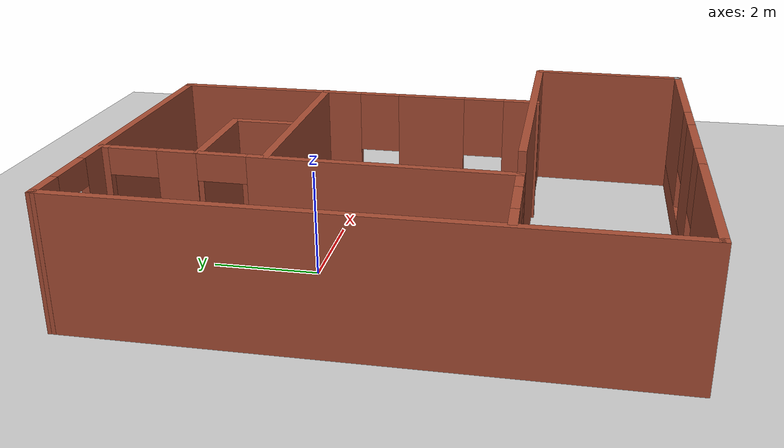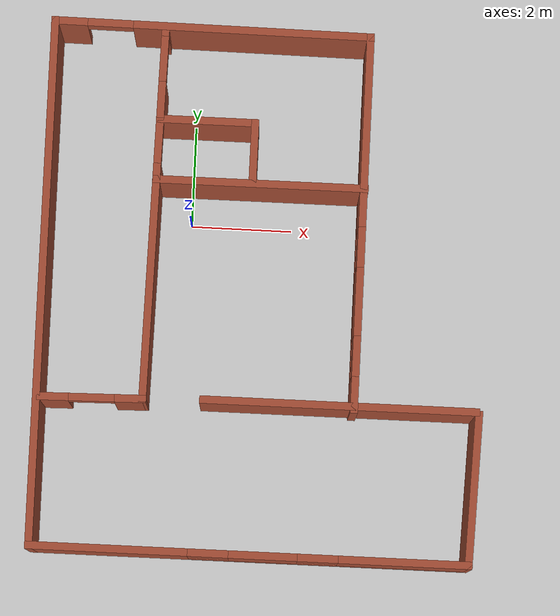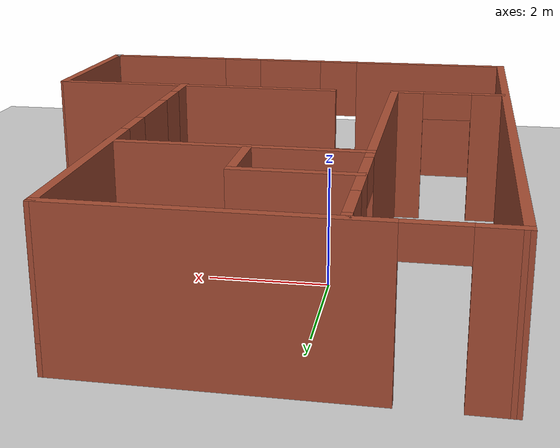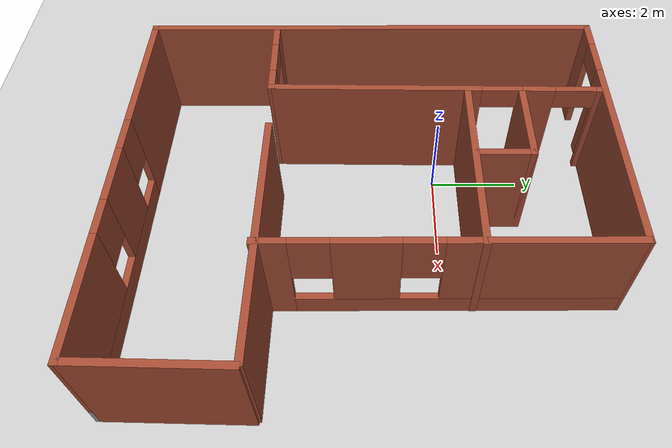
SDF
<sdf version="1.6">
 <world name="default">
  <model name="ground_plane">
   <static>1</static>
   <link name="link">
    <collision name="collision">
     <geometry><plane><normal>0 0 1</normal><size>100 100</size></plane></geometry>
     <surface>
      <contact><collide_bitmask>65535</collide_bitmask></contact>
      <friction><ode><mu>100</mu><mu2>50</mu2></ode></friction>
     </surface>
    </collision>
    <visual name="visual">
     <cast_shadows>0</cast_shadows>
     <geometry><plane><normal>0 0 1</normal><size>100 100</size></plane></geometry>
     <material>
      <script><uri>file://media/materials/scripts/gazebo.material</uri><name>Gazebo/Grey</name></script>
     </material>
    </visual>
   </link>
  </model>
  <model name="home">
   <link name="Wall_0">
    <pose>-4.35728 0.000688 0 0 0 -1.5708</pose>
    <visual name="Wall_0_Visual">
     <pose>0 0 1.25 0 -0 0</pose>
     <geometry><box><size>10.5 0.15 2.5</size></box></geometry>
     <material>
      <script><uri>file://media/materials/scripts/gazebo.material</uri><name>Gazebo/Bricks</name></script>
      <ambient>1 1 1 1</ambient>
      <shader type="pixel"/>
      <diffuse>1 1 1 1</diffuse>
      <specular>0.2 0.2 0.2 1</specular>
      <emissive>0 0 0 1</emissive>
     </material>
     <meta><layer>0</layer></meta>
    </visual>
    <collision name="Wall_0_Collision">
     <pose>0 0 1.25 0 -0 0</pose>
     <geometry><box><size>10.5 0.15 2.5</size></box></geometry>
     <surface>
      <friction>
       <ode><mu>1</mu><mu2>1</mu2><fdir1>0 0 0</fdir1><slip1>0</slip1><slip2>0</slip2></ode>
       <torsional>
        <coefficient>1</coefficient>
        <patch_radius>0</patch_radius>
        <surface_radius>0</surface_radius>
        <use_patch_radius>1</use_patch_radius>
        <ode><slip>0</slip></ode>
       </torsional>
      </friction>
      <bounce><restitution_coefficient>0</restitution_coefficient><threshold>1e+06</threshold></bounce>
      <contact>
       <collide_without_contact>0</collide_without_contact>
       <collide_without_contact_bitmask>1</collide_without_contact_bitmask>
       <collide_bitmask>1</collide_bitmask>
       <ode>
        <soft_cfm>0</soft_cfm>
        <soft_erp>0.2</soft_erp>
        <kp>1e+13</kp>
        <kd>1</kd>
        <max_vel>0.01</max_vel>
        <min_depth>0</min_depth>
       </ode>
       <bullet>
        <split_impulse>1</split_impulse>
        <split_impulse_penetration_threshold>-0.01</split_impulse_penetration_threshold>
        <soft_cfm>0</soft_cfm>
        <soft_erp>0.2</soft_erp>
        <kp>1e+13</kp>
        <kd>1</kd>
       </bullet>
      </contact>
     </surface>
    </collision>
   </link>
   <link name="Wall_10">
    <pose>-0.057284 -5.17431 0 0 -0 0</pose>
    <visual name="Wall_10_Visual_0">
     <pose>-2.78631 0 1.25 0 -0 0</pose>
     <geometry><box><size>3.17739 0.15 2.5</size></box></geometry>
     <material>
      <script><uri>file://media/materials/scripts/gazebo.material</uri><name>Gazebo/Bricks</name></script>
      <ambient>1 1 1 1</ambient>
      <shader type="pixel"/>
      <diffuse>1 1 1 1</diffuse>
      <specular>0.2 0.2 0.2 1</specular>
      <emissive>0 0 0 1</emissive>
     </material>
     <meta><layer>0</layer></meta>
    </visual>
    <visual name="Wall_10_Visual_1">
     <pose>1.58869 0 0.25 0 -0 0</pose>
     <geometry><box><size>5.57261 0.15 0.5</size></box></geometry>
     <material>
      <script><uri>file://media/materials/scripts/gazebo.material</uri><name>Gazebo/Bricks</name></script>
      <ambient>1 1 1 1</ambient>
      <shader type="pixel"/>
      <diffuse>1 1 1 1</diffuse>
      <specular>0.2 0.2 0.2 1</specular>
      <emissive>0 0 0 1</emissive>
     </material>
     <meta><layer>0</layer></meta>
    </visual>
    <visual name="Wall_10_Visual_2">
     <pose>0.277961 0 1.5 0 -0 0</pose>
     <geometry><box><size>1.35115 0.15 2</size></box></geometry>
     <material>
      <script><uri>file://media/materials/scripts/gazebo.material</uri><name>Gazebo/Bricks</name></script>
      <ambient>1 1 1 1</ambient>
      <shader type="pixel"/>
      <diffuse>1 1 1 1</diffuse>
      <specular>0.2 0.2 0.2 1</specular>
      <emissive>0 0 0 1</emissive>
     </material>
     <meta><layer>0</layer></meta>
    </visual>
    <visual name="Wall_10_Visual_3">
     <pose>3.06427 0 1.5 0 -0 0</pose>
     <geometry><box><size>2.62147 0.15 2</size></box></geometry>
     <material>
      <script><uri>file://media/materials/scripts/gazebo.material</uri><name>Gazebo/Bricks</name></script>
      <ambient>1 1 1 1</ambient>
      <shader type="pixel"/>
      <diffuse>1 1 1 1</diffuse>
      <specular>0.2 0.2 0.2 1</specular>
      <emissive>0 0 0 1</emissive>
     </material>
     <meta><layer>0</layer></meta>
    </visual>
    <visual name="Wall_10_Visual_4">
     <pose>-0.797613 0 1.9 0 -0 0</pose>
     <geometry><box><size>0.8 0.15 1.2</size></box></geometry>
     <material>
      <script><uri>file://media/materials/scripts/gazebo.material</uri><name>Gazebo/Bricks</name></script>
      <ambient>1 1 1 1</ambient>
      <shader type="pixel"/>
      <diffuse>1 1 1 1</diffuse>
      <specular>0.2 0.2 0.2 1</specular>
      <emissive>0 0 0 1</emissive>
     </material>
     <meta><layer>0</layer></meta>
    </visual>
    <visual name="Wall_10_Visual_5">
     <pose>1.35353 0 1.9 0 -0 0</pose>
     <geometry><box><size>0.8 0.15 1.2</size></box></geometry>
     <material>
      <script><uri>file://media/materials/scripts/gazebo.material</uri><name>Gazebo/Bricks</name></script>
      <ambient>1 1 1 1</ambient>
      <shader type="pixel"/>
      <diffuse>1 1 1 1</diffuse>
      <specular>0.2 0.2 0.2 1</specular>
      <emissive>0 0 0 1</emissive>
     </material>
     <meta><layer>0</layer></meta>
    </visual>
    <collision name="Wall_10_Collision_0">
     <pose>-2.78631 0 1.25 0 -0 0</pose>
     <geometry><box><size>3.17739 0.15 2.5</size></box></geometry>
     <surface>
      <friction>
       <ode><mu>1</mu><mu2>1</mu2><fdir1>0 0 0</fdir1><slip1>0</slip1><slip2>0</slip2></ode>
       <torsional>
        <coefficient>1</coefficient>
        <patch_radius>0</patch_radius>
        <surface_radius>0</surface_radius>
        <use_patch_radius>1</use_patch_radius>
        <ode><slip>0</slip></ode>
       </torsional>
      </friction>
      <bounce><restitution_coefficient>0</restitution_coefficient><threshold>1e+06</threshold></bounce>
      <contact>
       <collide_without_contact>0</collide_without_contact>
       <collide_without_contact_bitmask>1</collide_without_contact_bitmask>
       <collide_bitmask>1</collide_bitmask>
       <ode>
        <soft_cfm>0</soft_cfm>
        <soft_erp>0.2</soft_erp>
        <kp>1e+13</kp>
        <kd>1</kd>
        <max_vel>0.01</max_vel>
        <min_depth>0</min_depth>
       </ode>
       <bullet>
        <split_impulse>1</split_impulse>
        <split_impulse_penetration_threshold>-0.01</split_impulse_penetration_threshold>
        <soft_cfm>0</soft_cfm>
        <soft_erp>0.2</soft_erp>
        <kp>1e+13</kp>
        <kd>1</kd>
       </bullet>
      </contact>
     </surface>
    </collision>
    <collision name="Wall_10_Collision_1">
     <pose>1.58869 0 0.25 0 -0 0</pose>
     <geometry><box><size>5.57261 0.15 0.5</size></box></geometry>
     <surface>
      <friction>
       <ode><mu>1</mu><mu2>1</mu2><fdir1>0 0 0</fdir1><slip1>0</slip1><slip2>0</slip2></ode>
       <torsional>
        <coefficient>1</coefficient>
        <patch_radius>0</patch_radius>
        <surface_radius>0</surface_radius>
        <use_patch_radius>1</use_patch_radius>
        <ode><slip>0</slip></ode>
       </torsional>
      </friction>
      <bounce><restitution_coefficient>0</restitution_coefficient><threshold>1e+06</threshold></bounce>
      <contact>
       <collide_without_contact>0</collide_without_contact>
       <collide_without_contact_bitmask>1</collide_without_contact_bitmask>
       <collide_bitmask>1</collide_bitmask>
       <ode>
        <soft_cfm>0</soft_cfm>
        <soft_erp>0.2</soft_erp>
        <kp>1e+13</kp>
        <kd>1</kd>
        <max_vel>0.01</max_vel>
        <min_depth>0</min_depth>
       </ode>
       <bullet>
        <split_impulse>1</split_impulse>
        <split_impulse_penetration_threshold>-0.01</split_impulse_penetration_threshold>
        <soft_cfm>0</soft_cfm>
        <soft_erp>0.2</soft_erp>
        <kp>1e+13</kp>
        <kd>1</kd>
       </bullet>
      </contact>
     </surface>
    </collision>
    <collision name="Wall_10_Collision_2">
     <pose>0.277961 0 1.5 0 -0 0</pose>
     <geometry><box><size>1.35115 0.15 2</size></box></geometry>
     <surface>
      <friction>
       <ode><mu>1</mu><mu2>1</mu2><fdir1>0 0 0</fdir1><slip1>0</slip1><slip2>0</slip2></ode>
       <torsional>
        <coefficient>1</coefficient>
        <patch_radius>0</patch_radius>
        <surface_radius>0</surface_radius>
        <use_patch_radius>1</use_patch_radius>
        <ode><slip>0</slip></ode>
       </torsional>
      </friction>
      <bounce><restitution_coefficient>0</restitution_coefficient><threshold>1e+06</threshold></bounce>
      <contact>
       <collide_without_contact>0</collide_without_contact>
       <collide_without_contact_bitmask>1</collide_without_contact_bitmask>
       <collide_bitmask>1</collide_bitmask>
       <ode>
        <soft_cfm>0</soft_cfm>
        <soft_erp>0.2</soft_erp>
        <kp>1e+13</kp>
        <kd>1</kd>
        <max_vel>0.01</max_vel>
        <min_depth>0</min_depth>
       </ode>
       <bullet>
        <split_impulse>1</split_impulse>
        <split_impulse_penetration_threshold>-0.01</split_impulse_penetration_threshold>
        <soft_cfm>0</soft_cfm>
        <soft_erp>0.2</soft_erp>
        <kp>1e+13</kp>
        <kd>1</kd>
       </bullet>
      </contact>
     </surface>
    </collision>
    <collision name="Wall_10_Collision_3">
     <pose>3.06427 0 1.5 0 -0 0</pose>
     <geometry><box><size>2.62147 0.15 2</size></box></geometry>
     <surface>
      <friction>
       <ode><mu>1</mu><mu2>1</mu2><fdir1>0 0 0</fdir1><slip1>0</slip1><slip2>0</slip2></ode>
       <torsional>
        <coefficient>1</coefficient>
        <patch_radius>0</patch_radius>
        <surface_radius>0</surface_radius>
        <use_patch_radius>1</use_patch_radius>
        <ode><slip>0</slip></ode>
       </torsional>
      </friction>
      <bounce><restitution_coefficient>0</restitution_coefficient><threshold>1e+06</threshold></bounce>
      <contact>
       <collide_without_contact>0</collide_without_contact>
       <collide_without_contact_bitmask>1</collide_without_contact_bitmask>
       <collide_bitmask>1</collide_bitmask>
       <ode>
        <soft_cfm>0</soft_cfm>
        <soft_erp>0.2</soft_erp>
        <kp>1e+13</kp>
        <kd>1</kd>
        <max_vel>0.01</max_vel>
        <min_depth>0</min_depth>
       </ode>
       <bullet>
        <split_impulse>1</split_impulse>
        <split_impulse_penetration_threshold>-0.01</split_impulse_penetration_threshold>
        <soft_cfm>0</soft_cfm>
        <soft_erp>0.2</soft_erp>
        <kp>1e+13</kp>
        <kd>1</kd>
       </bullet>
      </contact>
     </surface>
    </collision>
    <collision name="Wall_10_Collision_4">
     <pose>-0.797613 0 1.9 0 -0 0</pose>
     <geometry><box><size>0.8 0.15 1.2</size></box></geometry>
     <surface>
      <friction>
       <ode><mu>1</mu><mu2>1</mu2><fdir1>0 0 0</fdir1><slip1>0</slip1><slip2>0</slip2></ode>
       <torsional>
        <coefficient>1</coefficient>
        <patch_radius>0</patch_radius>
        <surface_radius>0</surface_radius>
        <use_patch_radius>1</use_patch_radius>
        <ode><slip>0</slip></ode>
       </torsional>
      </friction>
      <bounce><restitution_coefficient>0</restitution_coefficient><threshold>1e+06</threshold></bounce>
      <contact>
       <collide_without_contact>0</collide_without_contact>
       <collide_without_contact_bitmask>1</collide_without_contact_bitmask>
       <collide_bitmask>1</collide_bitmask>
       <ode>
        <soft_cfm>0</soft_cfm>
        <soft_erp>0.2</soft_erp>
        <kp>1e+13</kp>
        <kd>1</kd>
        <max_vel>0.01</max_vel>
        <min_depth>0</min_depth>
       </ode>
       <bullet>
        <split_impulse>1</split_impulse>
        <split_impulse_penetration_threshold>-0.01</split_impulse_penetration_threshold>
        <soft_cfm>0</soft_cfm>
        <soft_erp>0.2</soft_erp>
        <kp>1e+13</kp>
        <kd>1</kd>
       </bullet>
      </contact>
     </surface>
    </collision>
    <collision name="Wall_10_Collision_5">
     <pose>1.35353 0 1.9 0 -0 0</pose>
     <geometry><box><size>0.8 0.15 1.2</size></box></geometry>
     <surface>
      <friction>
       <ode><mu>1</mu><mu2>1</mu2><fdir1>0 0 0</fdir1><slip1>0</slip1><slip2>0</slip2></ode>
       <torsional>
        <coefficient>1</coefficient>
        <patch_radius>0</patch_radius>
        <surface_radius>0</surface_radius>
        <use_patch_radius>1</use_patch_radius>
        <ode><slip>0</slip></ode>
       </torsional>
      </friction>
      <bounce><restitution_coefficient>0</restitution_coefficient><threshold>1e+06</threshold></bounce>
      <contact>
       <collide_without_contact>0</collide_without_contact>
       <collide_without_contact_bitmask>1</collide_without_contact_bitmask>
       <collide_bitmask>1</collide_bitmask>
       <ode>
        <soft_cfm>0</soft_cfm>
        <soft_erp>0.2</soft_erp>
        <kp>1e+13</kp>
        <kd>1</kd>
        <max_vel>0.01</max_vel>
        <min_depth>0</min_depth>
       </ode>
       <bullet>
        <split_impulse>1</split_impulse>
        <split_impulse_penetration_threshold>-0.01</split_impulse_penetration_threshold>
        <soft_cfm>0</soft_cfm>
        <soft_erp>0.2</soft_erp>
        <kp>1e+13</kp>
        <kd>1</kd>
       </bullet>
      </contact>
     </surface>
    </collision>
   </link>
   <link name="Wall_11">
    <pose>4.24272 -5.17431 0 0 -0 0</pose>
    <visual name="Wall_11_Visual">
     <pose>0 0 1.25 0 -0 0</pose>
     <geometry><box><size>0.15 0.15 2.5</size></box></geometry>
     <material>
      <script><uri>file://media/materials/scripts/gazebo.material</uri><name>Gazebo/Grey</name></script>
      <ambient>1 1 1 1</ambient>
      <shader type="pixel"/>
      <diffuse>0.7 0.7 0.7 1</diffuse>
      <specular>0.01 0.01 0.01 1</specular>
      <emissive>0 0 0 1</emissive>
     </material>
     <meta><layer>0</layer></meta>
    </visual>
    <collision name="Wall_11_Collision">
     <pose>0 0 1.25 0 -0 0</pose>
     <geometry><box><size>0.15 0.15 2.5</size></box></geometry>
     <surface>
      <friction>
       <ode><mu>1</mu><mu2>1</mu2><fdir1>0 0 0</fdir1><slip1>0</slip1><slip2>0</slip2></ode>
       <torsional>
        <coefficient>1</coefficient>
        <patch_radius>0</patch_radius>
        <surface_radius>0</surface_radius>
        <use_patch_radius>1</use_patch_radius>
        <ode><slip>0</slip></ode>
       </torsional>
      </friction>
      <bounce><restitution_coefficient>0</restitution_coefficient><threshold>1e+06</threshold></bounce>
      <contact>
       <collide_without_contact>0</collide_without_contact>
       <collide_without_contact_bitmask>1</collide_without_contact_bitmask>
       <collide_bitmask>1</collide_bitmask>
       <ode>
        <soft_cfm>0</soft_cfm>
        <soft_erp>0.2</soft_erp>
        <kp>1e+13</kp>
        <kd>1</kd>
        <max_vel>0.01</max_vel>
        <min_depth>0</min_depth>
       </ode>
       <bullet>
        <split_impulse>1</split_impulse>
        <split_impulse_penetration_threshold>-0.01</split_impulse_penetration_threshold>
        <soft_cfm>0</soft_cfm>
        <soft_erp>0.2</soft_erp>
        <kp>1e+13</kp>
        <kd>1</kd>
       </bullet>
      </contact>
     </surface>
    </collision>
   </link>
   <link name="Wall_12">
    <pose>4.28297 -3.69742 0 0 -0 1.54354</pose>
    <visual name="Wall_12_Visual">
     <pose>0 0 1.25 0 -0 0</pose>
     <geometry><box><size>3.10488 0.15 2.5</size></box></geometry>
     <material>
      <script><uri>file://media/materials/scripts/gazebo.material</uri><name>Gazebo/Bricks</name></script>
      <ambient>1 1 1 1</ambient>
      <shader type="pixel"/>
      <diffuse>1 1 1 1</diffuse>
      <specular>0.2 0.2 0.2 1</specular>
      <emissive>0 0 0 1</emissive>
     </material>
     <meta><layer>0</layer></meta>
    </visual>
    <collision name="Wall_12_Collision">
     <pose>0 0 1.25 0 -0 0</pose>
     <geometry><box><size>3.10488 0.15 2.5</size></box></geometry>
     <surface>
      <friction>
       <ode><mu>1</mu><mu2>1</mu2><fdir1>0 0 0</fdir1><slip1>0</slip1><slip2>0</slip2></ode>
       <torsional>
        <coefficient>1</coefficient>
        <patch_radius>0</patch_radius>
        <surface_radius>0</surface_radius>
        <use_patch_radius>1</use_patch_radius>
        <ode><slip>0</slip></ode>
       </torsional>
      </friction>
      <bounce><restitution_coefficient>0</restitution_coefficient><threshold>1e+06</threshold></bounce>
      <contact>
       <collide_without_contact>0</collide_without_contact>
       <collide_without_contact_bitmask>1</collide_without_contact_bitmask>
       <collide_bitmask>1</collide_bitmask>
       <ode>
        <soft_cfm>0</soft_cfm>
        <soft_erp>0.2</soft_erp>
        <kp>1e+13</kp>
        <kd>1</kd>
        <max_vel>0.01</max_vel>
        <min_depth>0</min_depth>
       </ode>
       <bullet>
        <split_impulse>1</split_impulse>
        <split_impulse_penetration_threshold>-0.01</split_impulse_penetration_threshold>
        <soft_cfm>0</soft_cfm>
        <soft_erp>0.2</soft_erp>
        <kp>1e+13</kp>
        <kd>1</kd>
       </bullet>
      </contact>
     </surface>
    </collision>
   </link>
   <link name="Wall_14">
    <pose>1.87287 1.44732 0 0 -0 1.5708</pose>
    <visual name="Wall_14_Visual_0">
     <pose>-3.39065 0 1.25 0 -0 0</pose>
     <geometry><box><size>0.718703 0.15 2.5</size></box></geometry>
     <material>
      <script><uri>file://media/materials/scripts/gazebo.material</uri><name>Gazebo/Bricks</name></script>
      <ambient>1 1 1 1</ambient>
      <shader type="pixel"/>
      <diffuse>1 1 1 1</diffuse>
      <specular>0.2 0.2 0.2 1</specular>
      <emissive>0 0 0 1</emissive>
     </material>
     <meta><layer>0</layer></meta>
    </visual>
    <visual name="Wall_14_Visual_2">
     <pose>-1.55572 0 1.5 0 -0 0</pose>
     <geometry><box><size>1.35115 0.15 2</size></box></geometry>
     <material>
      <script><uri>file://media/materials/scripts/gazebo.material</uri><name>Gazebo/Bricks</name></script>
      <ambient>1 1 1 1</ambient>
      <shader type="pixel"/>
      <diffuse>1 1 1 1</diffuse>
      <specular>0.2 0.2 0.2 1</specular>
      <emissive>0 0 0 1</emissive>
     </material>
     <meta><layer>0</layer></meta>
    </visual>
    <visual name="Wall_14_Visual_1">
     <pose>0.359352 0 0.25 0 -0 0</pose>
     <geometry><box><size>6.7813 0.15 0.5</size></box></geometry>
     <material>
      <script><uri>file://media/materials/scripts/gazebo.material</uri><name>Gazebo/Bricks</name></script>
      <ambient>1 1 1 1</ambient>
      <shader type="pixel"/>
      <diffuse>1 1 1 1</diffuse>
      <specular>0.2 0.2 0.2 1</specular>
      <emissive>0 0 0 1</emissive>
     </material>
     <meta><layer>0</layer></meta>
    </visual>
    <visual name="Wall_14_Visual_4">
     <pose>-2.6313 0 1.9 0 -0 0</pose>
     <geometry><box><size>0.8 0.15 1.2</size></box></geometry>
     <material>
      <script><uri>file://media/materials/scripts/gazebo.material</uri><name>Gazebo/Bricks</name></script>
      <ambient>1 1 1 1</ambient>
      <shader type="pixel"/>
      <diffuse>1 1 1 1</diffuse>
      <specular>0.2 0.2 0.2 1</specular>
      <emissive>0 0 0 1</emissive>
     </material>
     <meta><layer>0</layer></meta>
    </visual>
    <visual name="Wall_14_Visual_3">
     <pose>1.83492 0 1.5 0 -0 0</pose>
     <geometry><box><size>3.83015 0.15 2</size></box></geometry>
     <material>
      <script><uri>file://media/materials/scripts/gazebo.material</uri><name>Gazebo/Bricks</name></script>
      <ambient>1 1 1 1</ambient>
      <shader type="pixel"/>
      <diffuse>1 1 1 1</diffuse>
      <specular>0.2 0.2 0.2 1</specular>
      <emissive>0 0 0 1</emissive>
     </material>
     <meta><layer>0</layer></meta>
    </visual>
    <visual name="Wall_14_Visual_5">
     <pose>-0.48015 0 1.9 0 -0 0</pose>
     <geometry><box><size>0.8 0.15 1.2</size></box></geometry>
     <material>
      <script><uri>file://media/materials/scripts/gazebo.material</uri><name>Gazebo/Bricks</name></script>
      <ambient>1 1 1 1</ambient>
      <shader type="pixel"/>
      <diffuse>1 1 1 1</diffuse>
      <specular>0.2 0.2 0.2 1</specular>
      <emissive>0 0 0 1</emissive>
     </material>
     <meta><layer>0</layer></meta>
    </visual>
    <collision name="Wall_14_Collision_0">
     <pose>-3.39065 0 1.25 0 -0 0</pose>
     <geometry><box><size>0.718703 0.15 2.5</size></box></geometry>
     <surface>
      <friction>
       <ode><mu>1</mu><mu2>1</mu2><fdir1>0 0 0</fdir1><slip1>0</slip1><slip2>0</slip2></ode>
       <torsional>
        <coefficient>1</coefficient>
        <patch_radius>0</patch_radius>
        <surface_radius>0</surface_radius>
        <use_patch_radius>1</use_patch_radius>
        <ode><slip>0</slip></ode>
       </torsional>
      </friction>
      <bounce><restitution_coefficient>0</restitution_coefficient><threshold>1e+06</threshold></bounce>
      <contact>
       <collide_without_contact>0</collide_without_contact>
       <collide_without_contact_bitmask>1</collide_without_contact_bitmask>
       <collide_bitmask>1</collide_bitmask>
       <ode>
        <soft_cfm>0</soft_cfm>
        <soft_erp>0.2</soft_erp>
        <kp>1e+13</kp>
        <kd>1</kd>
        <max_vel>0.01</max_vel>
        <min_depth>0</min_depth>
       </ode>
       <bullet>
        <split_impulse>1</split_impulse>
        <split_impulse_penetration_threshold>-0.01</split_impulse_penetration_threshold>
        <soft_cfm>0</soft_cfm>
        <soft_erp>0.2</soft_erp>
        <kp>1e+13</kp>
        <kd>1</kd>
       </bullet>
      </contact>
     </surface>
    </collision>
    <collision name="Wall_14_Collision_1">
     <pose>0.359352 0 0.25 0 -0 0</pose>
     <geometry><box><size>6.7813 0.15 0.5</size></box></geometry>
     <surface>
      <friction>
       <ode><mu>1</mu><mu2>1</mu2><fdir1>0 0 0</fdir1><slip1>0</slip1><slip2>0</slip2></ode>
       <torsional>
        <coefficient>1</coefficient>
        <patch_radius>0</patch_radius>
        <surface_radius>0</surface_radius>
        <use_patch_radius>1</use_patch_radius>
        <ode><slip>0</slip></ode>
       </torsional>
      </friction>
      <bounce><restitution_coefficient>0</restitution_coefficient><threshold>1e+06</threshold></bounce>
      <contact>
       <collide_without_contact>0</collide_without_contact>
       <collide_without_contact_bitmask>1</collide_without_contact_bitmask>
       <collide_bitmask>1</collide_bitmask>
       <ode>
        <soft_cfm>0</soft_cfm>
        <soft_erp>0.2</soft_erp>
        <kp>1e+13</kp>
        <kd>1</kd>
        <max_vel>0.01</max_vel>
        <min_depth>0</min_depth>
       </ode>
       <bullet>
        <split_impulse>1</split_impulse>
        <split_impulse_penetration_threshold>-0.01</split_impulse_penetration_threshold>
        <soft_cfm>0</soft_cfm>
        <soft_erp>0.2</soft_erp>
        <kp>1e+13</kp>
        <kd>1</kd>
       </bullet>
      </contact>
     </surface>
    </collision>
    <collision name="Wall_14_Collision_3">
     <pose>1.83492 0 1.5 0 -0 0</pose>
     <geometry><box><size>3.83015 0.15 2</size></box></geometry>
     <surface>
      <friction>
       <ode><mu>1</mu><mu2>1</mu2><fdir1>0 0 0</fdir1><slip1>0</slip1><slip2>0</slip2></ode>
       <torsional>
        <coefficient>1</coefficient>
        <patch_radius>0</patch_radius>
        <surface_radius>0</surface_radius>
        <use_patch_radius>1</use_patch_radius>
        <ode><slip>0</slip></ode>
       </torsional>
      </friction>
      <bounce><restitution_coefficient>0</restitution_coefficient><threshold>1e+06</threshold></bounce>
      <contact>
       <collide_without_contact>0</collide_without_contact>
       <collide_without_contact_bitmask>1</collide_without_contact_bitmask>
       <collide_bitmask>1</collide_bitmask>
       <ode>
        <soft_cfm>0</soft_cfm>
        <soft_erp>0.2</soft_erp>
        <kp>1e+13</kp>
        <kd>1</kd>
        <max_vel>0.01</max_vel>
        <min_depth>0</min_depth>
       </ode>
       <bullet>
        <split_impulse>1</split_impulse>
        <split_impulse_penetration_threshold>-0.01</split_impulse_penetration_threshold>
        <soft_cfm>0</soft_cfm>
        <soft_erp>0.2</soft_erp>
        <kp>1e+13</kp>
        <kd>1</kd>
       </bullet>
      </contact>
     </surface>
    </collision>
    <collision name="Wall_14_Collision_2">
     <pose>-1.55572 0 1.5 0 -0 0</pose>
     <geometry><box><size>1.35115 0.15 2</size></box></geometry>
     <surface>
      <friction>
       <ode><mu>1</mu><mu2>1</mu2><fdir1>0 0 0</fdir1><slip1>0</slip1><slip2>0</slip2></ode>
       <torsional>
        <coefficient>1</coefficient>
        <patch_radius>0</patch_radius>
        <surface_radius>0</surface_radius>
        <use_patch_radius>1</use_patch_radius>
        <ode><slip>0</slip></ode>
       </torsional>
      </friction>
      <bounce><restitution_coefficient>0</restitution_coefficient><threshold>1e+06</threshold></bounce>
      <contact>
       <collide_without_contact>0</collide_without_contact>
       <collide_without_contact_bitmask>1</collide_without_contact_bitmask>
       <collide_bitmask>1</collide_bitmask>
       <ode>
        <soft_cfm>0</soft_cfm>
        <soft_erp>0.2</soft_erp>
        <kp>1e+13</kp>
        <kd>1</kd>
        <max_vel>0.01</max_vel>
        <min_depth>0</min_depth>
       </ode>
       <bullet>
        <split_impulse>1</split_impulse>
        <split_impulse_penetration_threshold>-0.01</split_impulse_penetration_threshold>
        <soft_cfm>0</soft_cfm>
        <soft_erp>0.2</soft_erp>
        <kp>1e+13</kp>
        <kd>1</kd>
       </bullet>
      </contact>
     </surface>
    </collision>
    <collision name="Wall_14_Collision_5">
     <pose>-0.48015 0 1.9 0 -0 0</pose>
     <geometry><box><size>0.8 0.15 1.2</size></box></geometry>
     <surface>
      <friction>
       <ode><mu>1</mu><mu2>1</mu2><fdir1>0 0 0</fdir1><slip1>0</slip1><slip2>0</slip2></ode>
       <torsional>
        <coefficient>1</coefficient>
        <patch_radius>0</patch_radius>
        <surface_radius>0</surface_radius>
        <use_patch_radius>1</use_patch_radius>
        <ode><slip>0</slip></ode>
       </torsional>
      </friction>
      <bounce><restitution_coefficient>0</restitution_coefficient><threshold>1e+06</threshold></bounce>
      <contact>
       <collide_without_contact>0</collide_without_contact>
       <collide_without_contact_bitmask>1</collide_without_contact_bitmask>
       <collide_bitmask>1</collide_bitmask>
       <ode>
        <soft_cfm>0</soft_cfm>
        <soft_erp>0.2</soft_erp>
        <kp>1e+13</kp>
        <kd>1</kd>
        <max_vel>0.01</max_vel>
        <min_depth>0</min_depth>
       </ode>
       <bullet>
        <split_impulse>1</split_impulse>
        <split_impulse_penetration_threshold>-0.01</split_impulse_penetration_threshold>
        <soft_cfm>0</soft_cfm>
        <soft_erp>0.2</soft_erp>
        <kp>1e+13</kp>
        <kd>1</kd>
       </bullet>
      </contact>
     </surface>
    </collision>
    <collision name="Wall_14_Collision_4">
     <pose>-2.6313 0 1.9 0 -0 0</pose>
     <geometry><box><size>0.8 0.15 1.2</size></box></geometry>
     <surface>
      <friction>
       <ode><mu>1</mu><mu2>1</mu2><fdir1>0 0 0</fdir1><slip1>0</slip1><slip2>0</slip2></ode>
       <torsional>
        <coefficient>1</coefficient>
        <patch_radius>0</patch_radius>
        <surface_radius>0</surface_radius>
        <use_patch_radius>1</use_patch_radius>
        <ode><slip>0</slip></ode>
       </torsional>
      </friction>
      <bounce><restitution_coefficient>0</restitution_coefficient><threshold>1e+06</threshold></bounce>
      <contact>
       <collide_without_contact>0</collide_without_contact>
       <collide_without_contact_bitmask>1</collide_without_contact_bitmask>
       <collide_bitmask>1</collide_bitmask>
       <ode>
        <soft_cfm>0</soft_cfm>
        <soft_erp>0.2</soft_erp>
        <kp>1e+13</kp>
        <kd>1</kd>
        <max_vel>0.01</max_vel>
        <min_depth>0</min_depth>
       </ode>
       <bullet>
        <split_impulse>1</split_impulse>
        <split_impulse_penetration_threshold>-0.01</split_impulse_penetration_threshold>
        <soft_cfm>0</soft_cfm>
        <soft_erp>0.2</soft_erp>
        <kp>1e+13</kp>
        <kd>1</kd>
       </bullet>
      </contact>
     </surface>
    </collision>
   </link>
   <link name="Wall_15">
    <pose>-1.24221 5.149 0 0 -0 3.13303</pose>
    <visual name="Wall_15_Visual_0">
     <pose>-0.808977 0 1.25 0 -0 0</pose>
     <geometry><box><size>4.76243 0.15 2.5</size></box></geometry>
     <material>
      <script><uri>file://media/materials/scripts/gazebo.material</uri><name>Gazebo/Bricks</name></script>
      <ambient>1 1 1 1</ambient>
      <shader type="pixel"/>
      <diffuse>1 1 1 1</diffuse>
      <specular>0.2 0.2 0.2 1</specular>
      <emissive>0 0 0 1</emissive>
     </material>
     <meta><layer>0</layer></meta>
    </visual>
    <visual name="Wall_15_Visual_1">
     <pose>2.83122 0 1.25 0 -0 0</pose>
     <geometry><box><size>0.717955 0.15 2.5</size></box></geometry>
     <material>
      <script><uri>file://media/materials/scripts/gazebo.material</uri><name>Gazebo/Bricks</name></script>
      <ambient>1 1 1 1</ambient>
      <shader type="pixel"/>
      <diffuse>1 1 1 1</diffuse>
      <specular>0.2 0.2 0.2 1</specular>
      <emissive>0 0 0 1</emissive>
     </material>
     <meta><layer>0</layer></meta>
    </visual>
    <visual name="Wall_15_Visual_2">
     <pose>2.02224 0 2.25 0 -0 0</pose>
     <geometry><box><size>0.9 0.15 0.5</size></box></geometry>
     <material>
      <script><uri>file://media/materials/scripts/gazebo.material</uri><name>Gazebo/Bricks</name></script>
      <ambient>1 1 1 1</ambient>
      <shader type="pixel"/>
      <diffuse>1 1 1 1</diffuse>
      <specular>0.2 0.2 0.2 1</specular>
      <emissive>0 0 0 1</emissive>
     </material>
     <meta><layer>0</layer></meta>
    </visual>
    <collision name="Wall_15_Collision_0">
     <pose>-0.808977 0 1.25 0 -0 0</pose>
     <geometry><box><size>4.76243 0.15 2.5</size></box></geometry>
     <surface>
      <friction>
       <ode><mu>1</mu><mu2>1</mu2><fdir1>0 0 0</fdir1><slip1>0</slip1><slip2>0</slip2></ode>
       <torsional>
        <coefficient>1</coefficient>
        <patch_radius>0</patch_radius>
        <surface_radius>0</surface_radius>
        <use_patch_radius>1</use_patch_radius>
        <ode><slip>0</slip></ode>
       </torsional>
      </friction>
      <bounce><restitution_coefficient>0</restitution_coefficient><threshold>1e+06</threshold></bounce>
      <contact>
       <collide_without_contact>0</collide_without_contact>
       <collide_without_contact_bitmask>1</collide_without_contact_bitmask>
       <collide_bitmask>1</collide_bitmask>
       <ode>
        <soft_cfm>0</soft_cfm>
        <soft_erp>0.2</soft_erp>
        <kp>1e+13</kp>
        <kd>1</kd>
        <max_vel>0.01</max_vel>
        <min_depth>0</min_depth>
       </ode>
       <bullet>
        <split_impulse>1</split_impulse>
        <split_impulse_penetration_threshold>-0.01</split_impulse_penetration_threshold>
        <soft_cfm>0</soft_cfm>
        <soft_erp>0.2</soft_erp>
        <kp>1e+13</kp>
        <kd>1</kd>
       </bullet>
      </contact>
     </surface>
    </collision>
    <collision name="Wall_15_Collision_2">
     <pose>2.02224 0 2.25 0 -0 0</pose>
     <geometry><box><size>0.9 0.15 0.5</size></box></geometry>
     <surface>
      <friction>
       <ode><mu>1</mu><mu2>1</mu2><fdir1>0 0 0</fdir1><slip1>0</slip1><slip2>0</slip2></ode>
       <torsional>
        <coefficient>1</coefficient>
        <patch_radius>0</patch_radius>
        <surface_radius>0</surface_radius>
        <use_patch_radius>1</use_patch_radius>
        <ode><slip>0</slip></ode>
       </torsional>
      </friction>
      <bounce><restitution_coefficient>0</restitution_coefficient><threshold>1e+06</threshold></bounce>
      <contact>
       <collide_without_contact>0</collide_without_contact>
       <collide_without_contact_bitmask>1</collide_without_contact_bitmask>
       <collide_bitmask>1</collide_bitmask>
       <ode>
        <soft_cfm>0</soft_cfm>
        <soft_erp>0.2</soft_erp>
        <kp>1e+13</kp>
        <kd>1</kd>
        <max_vel>0.01</max_vel>
        <min_depth>0</min_depth>
       </ode>
       <bullet>
        <split_impulse>1</split_impulse>
        <split_impulse_penetration_threshold>-0.01</split_impulse_penetration_threshold>
        <soft_cfm>0</soft_cfm>
        <soft_erp>0.2</soft_erp>
        <kp>1e+13</kp>
        <kd>1</kd>
       </bullet>
      </contact>
     </surface>
    </collision>
    <collision name="Wall_15_Collision_1">
     <pose>2.83122 0 1.25 0 -0 0</pose>
     <geometry><box><size>0.717955 0.15 2.5</size></box></geometry>
     <surface>
      <friction>
       <ode><mu>1</mu><mu2>1</mu2><fdir1>0 0 0</fdir1><slip1>0</slip1><slip2>0</slip2></ode>
       <torsional>
        <coefficient>1</coefficient>
        <patch_radius>0</patch_radius>
        <surface_radius>0</surface_radius>
        <use_patch_radius>1</use_patch_radius>
        <ode><slip>0</slip></ode>
       </torsional>
      </friction>
      <bounce><restitution_coefficient>0</restitution_coefficient><threshold>1e+06</threshold></bounce>
      <contact>
       <collide_without_contact>0</collide_without_contact>
       <collide_without_contact_bitmask>1</collide_without_contact_bitmask>
       <collide_bitmask>1</collide_bitmask>
       <ode>
        <soft_cfm>0</soft_cfm>
        <soft_erp>0.2</soft_erp>
        <kp>1e+13</kp>
        <kd>1</kd>
        <max_vel>0.01</max_vel>
        <min_depth>0</min_depth>
       </ode>
       <bullet>
        <split_impulse>1</split_impulse>
        <split_impulse_penetration_threshold>-0.01</split_impulse_penetration_threshold>
        <soft_cfm>0</soft_cfm>
        <soft_erp>0.2</soft_erp>
        <kp>1e+13</kp>
        <kd>1</kd>
       </bullet>
      </contact>
     </surface>
    </collision>
   </link>
   <link name="Wall_17">
    <pose>-3.27473 -2.23787 0 0 0 -3.12421</pose>
    <visual name="Wall_17_Visual_0">
     <pose>-0.760677 0 1.25 0 -0 0</pose>
     <geometry><box><size>0.62486 0.15 2.5</size></box></geometry>
     <material>
      <script><uri>file://media/materials/scripts/gazebo.material</uri><name>Gazebo/Bricks</name></script>
      <ambient>1 1 1 1</ambient>
      <shader type="pixel"/>
      <diffuse>1 1 1 1</diffuse>
      <specular>0.2 0.2 0.2 1</specular>
      <emissive>0 0 0 1</emissive>
     </material>
     <meta><layer>0</layer></meta>
    </visual>
    <visual name="Wall_17_Visual_1">
     <pose>0.76243 0 1.25 0 -0 0</pose>
     <geometry><box><size>0.621354 0.15 2.5</size></box></geometry>
     <material>
      <script><uri>file://media/materials/scripts/gazebo.material</uri><name>Gazebo/Bricks</name></script>
      <ambient>1 1 1 1</ambient>
      <shader type="pixel"/>
      <diffuse>1 1 1 1</diffuse>
      <specular>0.2 0.2 0.2 1</specular>
      <emissive>0 0 0 1</emissive>
     </material>
     <meta><layer>0</layer></meta>
    </visual>
    <visual name="Wall_17_Visual_2">
     <pose>0.001753 0 2.25 0 -0 0</pose>
     <geometry><box><size>0.9 0.15 0.5</size></box></geometry>
     <material>
      <script><uri>file://media/materials/scripts/gazebo.material</uri><name>Gazebo/Bricks</name></script>
      <ambient>1 1 1 1</ambient>
      <shader type="pixel"/>
      <diffuse>1 1 1 1</diffuse>
      <specular>0.2 0.2 0.2 1</specular>
      <emissive>0 0 0 1</emissive>
     </material>
     <meta><layer>0</layer></meta>
    </visual>
    <collision name="Wall_17_Collision_0">
     <pose>-0.760677 0 1.25 0 -0 0</pose>
     <geometry><box><size>0.62486 0.15 2.5</size></box></geometry>
     <surface>
      <friction>
       <ode><mu>1</mu><mu2>1</mu2><fdir1>0 0 0</fdir1><slip1>0</slip1><slip2>0</slip2></ode>
       <torsional>
        <coefficient>1</coefficient>
        <patch_radius>0</patch_radius>
        <surface_radius>0</surface_radius>
        <use_patch_radius>1</use_patch_radius>
        <ode><slip>0</slip></ode>
       </torsional>
      </friction>
      <bounce><restitution_coefficient>0</restitution_coefficient><threshold>1e+06</threshold></bounce>
      <contact>
       <collide_without_contact>0</collide_without_contact>
       <collide_without_contact_bitmask>1</collide_without_contact_bitmask>
       <collide_bitmask>1</collide_bitmask>
       <ode>
        <soft_cfm>0</soft_cfm>
        <soft_erp>0.2</soft_erp>
        <kp>1e+13</kp>
        <kd>1</kd>
        <max_vel>0.01</max_vel>
        <min_depth>0</min_depth>
       </ode>
       <bullet>
        <split_impulse>1</split_impulse>
        <split_impulse_penetration_threshold>-0.01</split_impulse_penetration_threshold>
        <soft_cfm>0</soft_cfm>
        <soft_erp>0.2</soft_erp>
        <kp>1e+13</kp>
        <kd>1</kd>
       </bullet>
      </contact>
     </surface>
    </collision>
    <collision name="Wall_17_Collision_1">
     <pose>0.76243 0 1.25 0 -0 0</pose>
     <geometry><box><size>0.621354 0.15 2.5</size></box></geometry>
     <surface>
      <friction>
       <ode><mu>1</mu><mu2>1</mu2><fdir1>0 0 0</fdir1><slip1>0</slip1><slip2>0</slip2></ode>
       <torsional>
        <coefficient>1</coefficient>
        <patch_radius>0</patch_radius>
        <surface_radius>0</surface_radius>
        <use_patch_radius>1</use_patch_radius>
        <ode><slip>0</slip></ode>
       </torsional>
      </friction>
      <bounce><restitution_coefficient>0</restitution_coefficient><threshold>1e+06</threshold></bounce>
      <contact>
       <collide_without_contact>0</collide_without_contact>
       <collide_without_contact_bitmask>1</collide_without_contact_bitmask>
       <collide_bitmask>1</collide_bitmask>
       <ode>
        <soft_cfm>0</soft_cfm>
        <soft_erp>0.2</soft_erp>
        <kp>1e+13</kp>
        <kd>1</kd>
        <max_vel>0.01</max_vel>
        <min_depth>0</min_depth>
       </ode>
       <bullet>
        <split_impulse>1</split_impulse>
        <split_impulse_penetration_threshold>-0.01</split_impulse_penetration_threshold>
        <soft_cfm>0</soft_cfm>
        <soft_erp>0.2</soft_erp>
        <kp>1e+13</kp>
        <kd>1</kd>
       </bullet>
      </contact>
     </surface>
    </collision>
    <collision name="Wall_17_Collision_2">
     <pose>0.001753 0 2.25 0 -0 0</pose>
     <geometry><box><size>0.9 0.15 0.5</size></box></geometry>
     <surface>
      <friction>
       <ode><mu>1</mu><mu2>1</mu2><fdir1>0 0 0</fdir1><slip1>0</slip1><slip2>0</slip2></ode>
       <torsional>
        <coefficient>1</coefficient>
        <patch_radius>0</patch_radius>
        <surface_radius>0</surface_radius>
        <use_patch_radius>1</use_patch_radius>
        <ode><slip>0</slip></ode>
       </torsional>
      </friction>
      <bounce><restitution_coefficient>0</restitution_coefficient><threshold>1e+06</threshold></bounce>
      <contact>
       <collide_without_contact>0</collide_without_contact>
       <collide_without_contact_bitmask>1</collide_without_contact_bitmask>
       <collide_bitmask>1</collide_bitmask>
       <ode>
        <soft_cfm>0</soft_cfm>
        <soft_erp>0.2</soft_erp>
        <kp>1e+13</kp>
        <kd>1</kd>
        <max_vel>0.01</max_vel>
        <min_depth>0</min_depth>
       </ode>
       <bullet>
        <split_impulse>1</split_impulse>
        <split_impulse_penetration_threshold>-0.01</split_impulse_penetration_threshold>
        <soft_cfm>0</soft_cfm>
        <soft_erp>0.2</soft_erp>
        <kp>1e+13</kp>
        <kd>1</kd>
       </bullet>
      </contact>
     </surface>
    </collision>
   </link>
   <link name="Wall_21">
    <pose>-0.163138 2.11834 0 0 -0 0</pose>
    <visual name="Wall_21_Visual">
     <pose>0 0 1.25 0 -0 0</pose>
     <geometry><box><size>4.25 0.15 2.5</size></box></geometry>
     <material>
      <script><uri>file://media/materials/scripts/gazebo.material</uri><name>Gazebo/Bricks</name></script>
      <ambient>1 1 1 1</ambient>
      <shader type="pixel"/>
      <diffuse>1 1 1 1</diffuse>
      <specular>0.2 0.2 0.2 1</specular>
      <emissive>0 0 0 1</emissive>
     </material>
     <meta><layer>0</layer></meta>
    </visual>
    <collision name="Wall_21_Collision">
     <pose>0 0 1.25 0 -0 0</pose>
     <geometry><box><size>4.25 0.15 2.5</size></box></geometry>
     <surface>
      <friction>
       <ode><mu>1</mu><mu2>1</mu2><fdir1>0 0 0</fdir1><slip1>0</slip1><slip2>0</slip2></ode>
       <torsional>
        <coefficient>1</coefficient>
        <patch_radius>0</patch_radius>
        <surface_radius>0</surface_radius>
        <use_patch_radius>1</use_patch_radius>
        <ode><slip>0</slip></ode>
       </torsional>
      </friction>
      <bounce><restitution_coefficient>0</restitution_coefficient><threshold>1e+06</threshold></bounce>
      <contact>
       <collide_without_contact>0</collide_without_contact>
       <collide_without_contact_bitmask>1</collide_without_contact_bitmask>
       <collide_bitmask>1</collide_bitmask>
       <ode>
        <soft_cfm>0</soft_cfm>
        <soft_erp>0.2</soft_erp>
        <kp>1e+13</kp>
        <kd>1</kd>
        <max_vel>0.01</max_vel>
        <min_depth>0</min_depth>
       </ode>
       <bullet>
        <split_impulse>1</split_impulse>
        <split_impulse_penetration_threshold>-0.01</split_impulse_penetration_threshold>
        <soft_cfm>0</soft_cfm>
        <soft_erp>0.2</soft_erp>
        <kp>1e+13</kp>
        <kd>1</kd>
       </bullet>
      </contact>
     </surface>
    </collision>
   </link>
   <link name="Wall_23">
    <pose>-1.24768 3.31473 0 0 -0 0</pose>
    <visual name="Wall_23_Visual">
     <pose>0 0 1.25 0 -0 0</pose>
     <geometry><box><size>2 0.15 2.5</size></box></geometry>
     <material>
      <script><uri>file://media/materials/scripts/gazebo.material</uri><name>Gazebo/Bricks</name></script>
      <ambient>1 1 1 1</ambient>
      <shader type="pixel"/>
      <diffuse>1 1 1 1</diffuse>
      <specular>0.2 0.2 0.2 1</specular>
      <emissive>0 0 0 1</emissive>
     </material>
     <meta><layer>0</layer></meta>
    </visual>
    <collision name="Wall_23_Collision">
     <pose>0 0 1.25 0 -0 0</pose>
     <geometry><box><size>2 0.15 2.5</size></box></geometry>
     <surface>
      <friction>
       <ode><mu>1</mu><mu2>1</mu2><fdir1>0 0 0</fdir1><slip1>0</slip1><slip2>0</slip2></ode>
       <torsional>
        <coefficient>1</coefficient>
        <patch_radius>0</patch_radius>
        <surface_radius>0</surface_radius>
        <use_patch_radius>1</use_patch_radius>
        <ode><slip>0</slip></ode>
       </torsional>
      </friction>
      <bounce><restitution_coefficient>0</restitution_coefficient><threshold>1e+06</threshold></bounce>
      <contact>
       <collide_without_contact>0</collide_without_contact>
       <collide_without_contact_bitmask>1</collide_without_contact_bitmask>
       <collide_bitmask>1</collide_bitmask>
       <ode>
        <soft_cfm>0</soft_cfm>
        <soft_erp>0.2</soft_erp>
        <kp>1e+13</kp>
        <kd>1</kd>
        <max_vel>0.01</max_vel>
        <min_depth>0</min_depth>
       </ode>
       <bullet>
        <split_impulse>1</split_impulse>
        <split_impulse_penetration_threshold>-0.01</split_impulse_penetration_threshold>
        <soft_cfm>0</soft_cfm>
        <soft_erp>0.2</soft_erp>
        <kp>1e+13</kp>
        <kd>1</kd>
       </bullet>
      </contact>
     </surface>
    </collision>
   </link>
   <link name="Wall_29">
    <pose>-0.322682 2.76473 0 0 0 -1.5708</pose>
    <visual name="Wall_29_Visual">
     <pose>0 0 1.25 0 -0 0</pose>
     <geometry><box><size>1.25 0.15 2.5</size></box></geometry>
     <material>
      <script><uri>file://media/materials/scripts/gazebo.material</uri><name>Gazebo/Bricks</name></script>
      <ambient>1 1 1 1</ambient>
      <shader type="pixel"/>
      <diffuse>1 1 1 1</diffuse>
      <specular>0.2 0.2 0.2 1</specular>
      <emissive>0 0 0 1</emissive>
     </material>
     <meta><layer>0</layer></meta>
    </visual>
    <collision name="Wall_29_Collision">
     <pose>0 0 1.25 0 -0 0</pose>
     <geometry><box><size>1.25 0.15 2.5</size></box></geometry>
     <surface>
      <friction>
       <ode><mu>1</mu><mu2>1</mu2><fdir1>0 0 0</fdir1><slip1>0</slip1><slip2>0</slip2></ode>
       <torsional>
        <coefficient>1</coefficient>
        <patch_radius>0</patch_radius>
        <surface_radius>0</surface_radius>
        <use_patch_radius>1</use_patch_radius>
        <ode><slip>0</slip></ode>
       </torsional>
      </friction>
      <bounce><restitution_coefficient>0</restitution_coefficient><threshold>1e+06</threshold></bounce>
      <contact>
       <collide_without_contact>0</collide_without_contact>
       <collide_without_contact_bitmask>1</collide_without_contact_bitmask>
       <collide_bitmask>1</collide_bitmask>
       <ode>
        <soft_cfm>0</soft_cfm>
        <soft_erp>0.2</soft_erp>
        <kp>1e+13</kp>
        <kd>1</kd>
        <max_vel>0.01</max_vel>
        <min_depth>0</min_depth>
       </ode>
       <bullet>
        <split_impulse>1</split_impulse>
        <split_impulse_penetration_threshold>-0.01</split_impulse_penetration_threshold>
        <soft_cfm>0</soft_cfm>
        <soft_erp>0.2</soft_erp>
        <kp>1e+13</kp>
        <kd>1</kd>
       </bullet>
      </contact>
     </surface>
    </collision>
   </link>
   <link name="Wall_5">
    <pose>-2.22473 1.43712 0 0 0 -1.58502</pose>
    <visual name="Wall_5_Visual_0">
     <pose>-3.6274 0 1.25 0 -0 0</pose>
     <geometry><box><size>0.210578 0.15 2.5</size></box></geometry>
     <material>
      <script><uri>file://media/materials/scripts/gazebo.material</uri><name>Gazebo/Bricks</name></script>
      <ambient>1 1 1 1</ambient>
      <shader type="pixel"/>
      <diffuse>1 1 1 1</diffuse>
      <specular>0.2 0.2 0.2 1</specular>
      <emissive>0 0 0 1</emissive>
     </material>
     <meta><layer>0</layer></meta>
    </visual>
    <visual name="Wall_5_Visual_1">
     <pose>-2.26053 0 1.25 0 -0 0</pose>
     <geometry><box><size>0.723174 0.15 2.5</size></box></geometry>
     <material>
      <script><uri>file://media/materials/scripts/gazebo.material</uri><name>Gazebo/Bricks</name></script>
      <ambient>1 1 1 1</ambient>
      <shader type="pixel"/>
      <diffuse>1 1 1 1</diffuse>
      <specular>0.2 0.2 0.2 1</specular>
      <emissive>0 0 0 1</emissive>
     </material>
     <meta><layer>0</layer></meta>
    </visual>
    <visual name="Wall_5_Visual_2">
     <pose>1.36688 0 1.25 0 -0 0</pose>
     <geometry><box><size>4.73163 0.15 2.5</size></box></geometry>
     <material>
      <script><uri>file://media/materials/scripts/gazebo.material</uri><name>Gazebo/Bricks</name></script>
      <ambient>1 1 1 1</ambient>
      <shader type="pixel"/>
      <diffuse>1 1 1 1</diffuse>
      <specular>0.2 0.2 0.2 1</specular>
      <emissive>0 0 0 1</emissive>
     </material>
     <meta><layer>0</layer></meta>
    </visual>
    <visual name="Wall_5_Visual_3">
     <pose>-3.07212 0 2.25 0 -0 0</pose>
     <geometry><box><size>0.9 0.15 0.5</size></box></geometry>
     <material>
      <script><uri>file://media/materials/scripts/gazebo.material</uri><name>Gazebo/Bricks</name></script>
      <ambient>1 1 1 1</ambient>
      <shader type="pixel"/>
      <diffuse>1 1 1 1</diffuse>
      <specular>0.2 0.2 0.2 1</specular>
      <emissive>0 0 0 1</emissive>
     </material>
     <meta><layer>0</layer></meta>
    </visual>
    <visual name="Wall_5_Visual_4">
     <pose>-1.44894 0 2.25 0 -0 0</pose>
     <geometry><box><size>0.9 0.15 0.5</size></box></geometry>
     <material>
      <script><uri>file://media/materials/scripts/gazebo.material</uri><name>Gazebo/Bricks</name></script>
      <ambient>1 1 1 1</ambient>
      <shader type="pixel"/>
      <diffuse>1 1 1 1</diffuse>
      <specular>0.2 0.2 0.2 1</specular>
      <emissive>0 0 0 1</emissive>
     </material>
     <meta><layer>0</layer></meta>
    </visual>
    <collision name="Wall_5_Collision_0">
     <pose>-3.6274 0 1.25 0 -0 0</pose>
     <geometry><box><size>0.210578 0.15 2.5</size></box></geometry>
     <surface>
      <friction>
       <ode><mu>1</mu><mu2>1</mu2><fdir1>0 0 0</fdir1><slip1>0</slip1><slip2>0</slip2></ode>
       <torsional>
        <coefficient>1</coefficient>
        <patch_radius>0</patch_radius>
        <surface_radius>0</surface_radius>
        <use_patch_radius>1</use_patch_radius>
        <ode><slip>0</slip></ode>
       </torsional>
      </friction>
      <bounce><restitution_coefficient>0</restitution_coefficient><threshold>1e+06</threshold></bounce>
      <contact>
       <collide_without_contact>0</collide_without_contact>
       <collide_without_contact_bitmask>1</collide_without_contact_bitmask>
       <collide_bitmask>1</collide_bitmask>
       <ode>
        <soft_cfm>0</soft_cfm>
        <soft_erp>0.2</soft_erp>
        <kp>1e+13</kp>
        <kd>1</kd>
        <max_vel>0.01</max_vel>
        <min_depth>0</min_depth>
       </ode>
       <bullet>
        <split_impulse>1</split_impulse>
        <split_impulse_penetration_threshold>-0.01</split_impulse_penetration_threshold>
        <soft_cfm>0</soft_cfm>
        <soft_erp>0.2</soft_erp>
        <kp>1e+13</kp>
        <kd>1</kd>
       </bullet>
      </contact>
     </surface>
    </collision>
    <collision name="Wall_5_Collision_1">
     <pose>-2.26053 0 1.25 0 -0 0</pose>
     <geometry><box><size>0.723174 0.15 2.5</size></box></geometry>
     <surface>
      <friction>
       <ode><mu>1</mu><mu2>1</mu2><fdir1>0 0 0</fdir1><slip1>0</slip1><slip2>0</slip2></ode>
       <torsional>
        <coefficient>1</coefficient>
        <patch_radius>0</patch_radius>
        <surface_radius>0</surface_radius>
        <use_patch_radius>1</use_patch_radius>
        <ode><slip>0</slip></ode>
       </torsional>
      </friction>
      <bounce><restitution_coefficient>0</restitution_coefficient><threshold>1e+06</threshold></bounce>
      <contact>
       <collide_without_contact>0</collide_without_contact>
       <collide_without_contact_bitmask>1</collide_without_contact_bitmask>
       <collide_bitmask>1</collide_bitmask>
       <ode>
        <soft_cfm>0</soft_cfm>
        <soft_erp>0.2</soft_erp>
        <kp>1e+13</kp>
        <kd>1</kd>
        <max_vel>0.01</max_vel>
        <min_depth>0</min_depth>
       </ode>
       <bullet>
        <split_impulse>1</split_impulse>
        <split_impulse_penetration_threshold>-0.01</split_impulse_penetration_threshold>
        <soft_cfm>0</soft_cfm>
        <soft_erp>0.2</soft_erp>
        <kp>1e+13</kp>
        <kd>1</kd>
       </bullet>
      </contact>
     </surface>
    </collision>
    <collision name="Wall_5_Collision_2">
     <pose>1.36688 0 1.25 0 -0 0</pose>
     <geometry><box><size>4.73163 0.15 2.5</size></box></geometry>
     <surface>
      <friction>
       <ode><mu>1</mu><mu2>1</mu2><fdir1>0 0 0</fdir1><slip1>0</slip1><slip2>0</slip2></ode>
       <torsional>
        <coefficient>1</coefficient>
        <patch_radius>0</patch_radius>
        <surface_radius>0</surface_radius>
        <use_patch_radius>1</use_patch_radius>
        <ode><slip>0</slip></ode>
       </torsional>
      </friction>
      <bounce><restitution_coefficient>0</restitution_coefficient><threshold>1e+06</threshold></bounce>
      <contact>
       <collide_without_contact>0</collide_without_contact>
       <collide_without_contact_bitmask>1</collide_without_contact_bitmask>
       <collide_bitmask>1</collide_bitmask>
       <ode>
        <soft_cfm>0</soft_cfm>
        <soft_erp>0.2</soft_erp>
        <kp>1e+13</kp>
        <kd>1</kd>
        <max_vel>0.01</max_vel>
        <min_depth>0</min_depth>
       </ode>
       <bullet>
        <split_impulse>1</split_impulse>
        <split_impulse_penetration_threshold>-0.01</split_impulse_penetration_threshold>
        <soft_cfm>0</soft_cfm>
        <soft_erp>0.2</soft_erp>
        <kp>1e+13</kp>
        <kd>1</kd>
       </bullet>
      </contact>
     </surface>
    </collision>
    <collision name="Wall_5_Collision_3">
     <pose>-3.07212 0 2.25 0 -0 0</pose>
     <geometry><box><size>0.9 0.15 0.5</size></box></geometry>
     <surface>
      <friction>
       <ode><mu>1</mu><mu2>1</mu2><fdir1>0 0 0</fdir1><slip1>0</slip1><slip2>0</slip2></ode>
       <torsional>
        <coefficient>1</coefficient>
        <patch_radius>0</patch_radius>
        <surface_radius>0</surface_radius>
        <use_patch_radius>1</use_patch_radius>
        <ode><slip>0</slip></ode>
       </torsional>
      </friction>
      <bounce><restitution_coefficient>0</restitution_coefficient><threshold>1e+06</threshold></bounce>
      <contact>
       <collide_without_contact>0</collide_without_contact>
       <collide_without_contact_bitmask>1</collide_without_contact_bitmask>
       <collide_bitmask>1</collide_bitmask>
       <ode>
        <soft_cfm>0</soft_cfm>
        <soft_erp>0.2</soft_erp>
        <kp>1e+13</kp>
        <kd>1</kd>
        <max_vel>0.01</max_vel>
        <min_depth>0</min_depth>
       </ode>
       <bullet>
        <split_impulse>1</split_impulse>
        <split_impulse_penetration_threshold>-0.01</split_impulse_penetration_threshold>
        <soft_cfm>0</soft_cfm>
        <soft_erp>0.2</soft_erp>
        <kp>1e+13</kp>
        <kd>1</kd>
       </bullet>
      </contact>
     </surface>
    </collision>
    <collision name="Wall_5_Collision_4">
     <pose>-1.44894 0 2.25 0 -0 0</pose>
     <geometry><box><size>0.9 0.15 0.5</size></box></geometry>
     <surface>
      <friction>
       <ode><mu>1</mu><mu2>1</mu2><fdir1>0 0 0</fdir1><slip1>0</slip1><slip2>0</slip2></ode>
       <torsional>
        <coefficient>1</coefficient>
        <patch_radius>0</patch_radius>
        <surface_radius>0</surface_radius>
        <use_patch_radius>1</use_patch_radius>
        <ode><slip>0</slip></ode>
       </torsional>
      </friction>
      <bounce><restitution_coefficient>0</restitution_coefficient><threshold>1e+06</threshold></bounce>
      <contact>
       <collide_without_contact>0</collide_without_contact>
       <collide_without_contact_bitmask>1</collide_without_contact_bitmask>
       <collide_bitmask>1</collide_bitmask>
       <ode>
        <soft_cfm>0</soft_cfm>
        <soft_erp>0.2</soft_erp>
        <kp>1e+13</kp>
        <kd>1</kd>
        <max_vel>0.01</max_vel>
        <min_depth>0</min_depth>
       </ode>
       <bullet>
        <split_impulse>1</split_impulse>
        <split_impulse_penetration_threshold>-0.01</split_impulse_penetration_threshold>
        <soft_cfm>0</soft_cfm>
        <soft_erp>0.2</soft_erp>
        <kp>1e+13</kp>
        <kd>1</kd>
       </bullet>
      </contact>
     </surface>
    </collision>
   </link>
   <link name="Wall_6">
    <pose>1.59116 -2.17468 0 0 -0 0</pose>
    <inertial>
     <mass>1</mass>
     <inertia><ixx>1</ixx><ixy>0</ixy><ixz>0</ixz><iyy>1</iyy><iyz>0</iyz><izz>1</izz></inertia>
    </inertial>
    <visual name="Wall_6_Visual">
     <pose>0 0 1.25 0 -0 0</pose>
     <geometry><box><size>5.5 0.15 2.5</size></box></geometry>
     <material>
      <script><uri>file://media/materials/scripts/gazebo.material</uri><name>Gazebo/Bricks</name></script>
      <ambient>1 1 1 1</ambient>
      <shader type="pixel"><normal_map>__default__</normal_map></shader>
      <diffuse>1 1 1 1</diffuse>
      <specular>0.2 0.2 0.2 1</specular>
      <emissive>0 0 0 1</emissive>
     </material>
     <meta><layer>0</layer></meta>
    </visual>
    <collision name="Wall_6_Collision">
     <pose>0 0 1.25 0 -0 0</pose>
     <geometry><box><size>5.5 0.15 2.5</size></box></geometry>
     <surface>
      <friction>
       <ode><mu>1</mu><mu2>1</mu2><fdir1>0 0 0</fdir1><slip1>0</slip1><slip2>0</slip2></ode>
       <torsional>
        <coefficient>1</coefficient>
        <patch_radius>0</patch_radius>
        <surface_radius>0</surface_radius>
        <use_patch_radius>1</use_patch_radius>
        <ode><slip>0</slip></ode>
       </torsional>
      </friction>
      <bounce><restitution_coefficient>0</restitution_coefficient><threshold>1e+06</threshold></bounce>
      <contact>
       <collide_without_contact>0</collide_without_contact>
       <collide_without_contact_bitmask>1</collide_without_contact_bitmask>
       <collide_bitmask>1</collide_bitmask>
       <ode>
        <soft_cfm>0</soft_cfm>
        <soft_erp>0.2</soft_erp>
        <kp>1e+13</kp>
        <kd>1</kd>
        <max_vel>0.01</max_vel>
        <min_depth>0</min_depth>
       </ode>
       <bullet>
        <split_impulse>1</split_impulse>
        <split_impulse_penetration_threshold>-0.01</split_impulse_penetration_threshold>
        <soft_cfm>0</soft_cfm>
        <soft_erp>0.2</soft_erp>
        <kp>1e+13</kp>
        <kd>1</kd>
       </bullet>
      </contact>
     </surface>
    </collision>
   </link>
   <static>1</static>
   <pose>1.51072 -1.46585 0 0 -0 0</pose>
  </model>
 </world>
</sdf>
